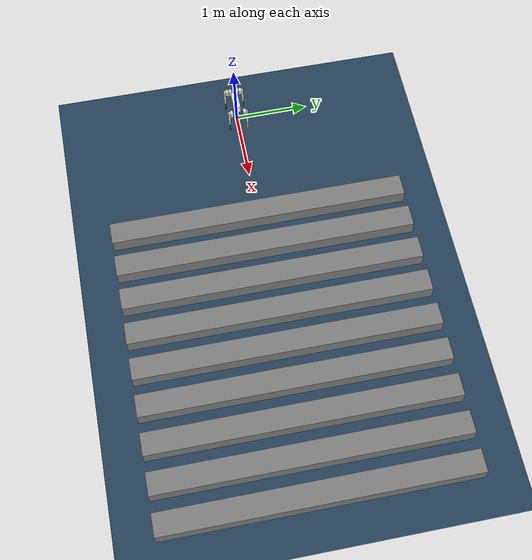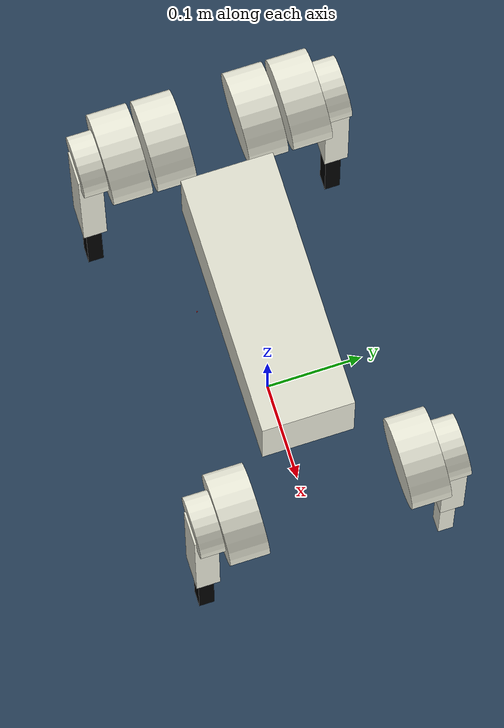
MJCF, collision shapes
<mujoco model="empty_world">
  <include file="go1.xml"/>
  <statistic center="0 0 0.1" extent="0.8"/>

  <visual>
    <headlight diffuse="0.6 0.6 0.6" ambient="0.3 0.3 0.3" specular="0 0 0"/>
    <rgba haze="0.15 0.25 0.35 1"/>
    <global azimuth="-130" elevation="-20"/>
  </visual>

  <asset>
    <texture type="skybox" builtin="gradient" rgb1="0.3 0.5 0.7" rgb2="0 0 0" width="512" height="3072"/>
    <texture type="2d" name="groundplane" builtin="checker" mark="edge" rgb1="0.2 0.3 0.4" rgb2="0.1 0.2 0.3"
      markrgb="0.8 0.8 0.8" width="300" height="300"/>
    <material name="groundplane" texture="groundplane" texuniform="true" texrepeat="5 5" reflectance="0.2"/>
  </asset>

  <worldbody>
    <light pos="0 0 1.5" dir="0 0 -1" directional="true"/>
    <geom name="floor" size="0 0 0.05" type="plane" material="groundplane"/>

    <geom pos="1.7 0 0.10" type="box"  size="0.15 2 0.10" quat="1.0 0 0 0"/>
    <geom pos="2.2 0 0.10" type="box"  size="0.15 2 0.10" quat="1.0 0 0 0"/>
    <geom pos="2.7 0 0.10" type="box"  size="0.15 2 0.10" quat="1.0 0 0 0"/>
    <geom pos="3.2 0 0.10" type="box"  size="0.15 2 0.10" quat="1.0 0 0 0"/>
    <geom pos="3.7 0 0.10" type="box"  size="0.15 2 0.10" quat="1.0 0 0 0"/>
    <geom pos="4.2 0 0.10" type="box"  size="0.15 2 0.10" quat="1.0 0 0 0"/>
    <geom pos="4.7 0 0.10" type="box"  size="0.15 2 0.10" quat="1.0 0 0 0"/>
    <geom pos="5.2 0 0.10" type="box"  size="0.15 2 0.10" quat="1.0 0 0 0"/>
    <geom pos="5.7 0 0.10" type="box"  size="0.15 2 0.10" quat="1.0 0 0 0"/>

  </worldbody>
</mujoco>

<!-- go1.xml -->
<mujoco model="go1">
  <compiler angle="radian" meshdir="../meshes" autolimits="true" />

  <option cone="elliptic" impratio="100" />

    <default>
      <joint axis="0 1 0" damping="0.1" armature="0.01" frictionloss="0.2"/>
    </default>

    <asset>
        <mesh name="trunk" file="trunk.stl" />
        <mesh name="hip" file="hip.stl" />
        <mesh name="thigh_mirror" file="thigh_mirror.stl" />
        <mesh name="calf" file="calf.stl" />
        <mesh name="thigh" file="thigh.stl" />
        <mesh name="d435" file="d435_simplified.stl" />
    </asset>

    <worldbody>
        <body name="base_link" pos="0 0 0.35">
            <inertial pos="0.0116053 0.00442221 0.000106692" quat="0.0111438 0.707126 -0.00935374 0.706938" mass="4.801" diaginertia="0.0447997 0.0366257 0.0162187" />
            <freejoint />
            <geom type="mesh" contype="0" conaffinity="0" group="1" rgba="0.913725 0.913725 0.847059 1" mesh="trunk" />
            <geom size="0.13 0.04675 0.057" type="box" rgba="0.913725 0.913725 0.847059 1" />
            <geom size="0.0005 0.0005 0.0005" pos="-0.01592 -0.06659 -0.00617" type="box" contype="0" conaffinity="0" group="1" rgba="0.8 0 0 0" />
            <geom size="0.0005 0.0005 0.0005" pos="-0.01592 -0.06659 -0.00617" type="box" rgba="0.8 0 0 0" />
            <site name="imu" pos="0 0 0"/>
            <body name="depth_camera" pos="0.28 0 0.12" euler="0 0.349066 0">
                <!-- 相对于这个body的位置和方向 不要更改 !fovy the same as D435i for 4:3 aspect ratio -->
                <camera name="depth_camera" pos="0. 0. 0." euler="1.57 -1.57 0" fovy="58"/>
                <geom type="mesh" euler="-1.57 1.57 0" contype="0" conaffinity="0" group="1" rgba="0.913725 0.913725 0.847059 1" mesh="d435" />
            </body>

            <body name="FR_hip" pos="0.1881 -0.04675 0">
                <inertial pos="-0.00406411 -0.0193463 4.50733e-06" quat="0.467526 0.531662 -0.466259 0.530431" mass="0.679292" diaginertia="0.00131334 0.00122648 0.000728484" />
                <joint name="FR_hip_joint" pos="0 0 0" axis="1 0 0" limited="true" range="-0.802851 0.802851" />
                <geom quat="0 1 0 0" type="mesh" contype="0" conaffinity="0" group="1" rgba="0.913725 0.913725 0.847059 1" mesh="hip" />
                <geom size="0.046 0.02" pos="0 -0.045 0" quat="0.707107 0.707107 0 0" type="cylinder" rgba="0.913725 0.913725 0.847059 0" />
                <geom size="0.031 0.02" pos="0 -0.07 0" quat="0.707107 0.707107 0 0" type="cylinder" rgba="0.913725 0.913725 0.847059 0" />

                <body name="FR_thigh" pos="0 -0.08 0">
                    <inertial pos="-0.003468 0.018947 -0.032736" quat="0.999266 0.00067676 -0.0382978 0.000639813" mass="0.898919" diaginertia="0.00542178 0.00514246 0.000998869" />
                    <joint name="FR_thigh_joint" pos="0 0 0" axis="0 1 0" limited="true" range="-1.0472 4.18879" />
                    <geom type="mesh" contype="0" conaffinity="0" group="1" rgba="0.913725 0.913725 0.847059 1" mesh="thigh_mirror" />
                    <geom size="0.1065 0.01225 0.017" pos="0 0 -0.1065" quat="0.707107 0 0.707107 0" type="box" rgba="0.913725 0.913725 0.847059 0" />
                    <body name="FR_calf" pos="0 0 -0.213">
                        <inertial pos="0.00455603 0.0009473 -0.147239" quat="0.762045 0.00970173 0.0180098 0.647201" mass="0.218015" diaginertia="0.00399678 0.00398122 3.99428e-05" />
                        <joint name="FR_calf_joint" pos="0 0 0" axis="0 1 0" limited="true" range="-2.69653 -0.916298" />
                        <geom type="mesh" contype="0" conaffinity="0" group="1" rgba="0 0 0 1" mesh="calf" />
                        <geom size="0.1065 0.008 0.008" pos="0 0 -0.1065" quat="0.707107 0 0.707107 0" type="box" rgba="0 0 0 0" />
                        <geom size="0.01" pos="0 0 -0.213" contype="0" conaffinity="0" group="1" rgba="0 0 0 1" />
                        <geom size="0.02" pos="0 0 -0.213" rgba="0 0 0 1" />
                    </body>
                </body>
            </body>

            <body name="FL_hip" pos="0.1881 0.04675 0">
                <inertial pos="-0.00406411 0.0193463 4.50733e-06" quat="0.531662 0.467526 -0.530431 0.466259" mass="0.679292" diaginertia="0.00131334 0.00122648 0.000728484" />
                <joint name="FL_hip_joint" pos="0 0 0" axis="1 0 0" limited="true" range="-0.802851 0.802851" />
                <geom type="mesh" contype="0" conaffinity="0" group="1" rgba="0.913725 0.913725 0.847059 1" mesh="hip" />
                <geom size="0.046 0.02" pos="0 0.045 0" quat="0.707107 0.707107 0 0" type="cylinder" rgba="0.913725 0.913725 0.847059 0" />
                <geom size="0.031 0.02" pos="0 0.07 0" quat="0.707107 0.707107 0 0" type="cylinder" rgba="0.913725 0.913725 0.847059 0" />

                <body name="FL_thigh" pos="0 0.08 0">
                    <inertial pos="-0.003468 -0.018947 -0.032736" quat="0.999266 -0.00067676 -0.0382978 -0.000639813" mass="0.898919" diaginertia="0.00542178 0.00514246 0.000998869" />
                    <joint name="FL_thigh_joint" pos="0 0 0" axis="0 1 0" limited="true" range="-1.0472 4.18879" />
                    <geom type="mesh" contype="0" conaffinity="0" group="1" rgba="0.913725 0.913725 0.847059 1" mesh="thigh" />
                    <geom size="0.1065 0.01225 0.017" pos="0 0 -0.1065" quat="0.707107 0 0.707107 0" type="box" rgba="0.913725 0.913725 0.847059 0" />
                    <body name="FL_calf" pos="0 0 -0.213">
                        <inertial pos="0.00455603 0.0009473 -0.147239" quat="0.762045 0.00970173 0.0180098 0.647201" mass="0.218015" diaginertia="0.00399678 0.00398122 3.99428e-05" />
                        <joint name="FL_calf_joint" pos="0 0 0" axis="0 1 0" limited="true" range="-2.69653 -0.916298" />
                        <geom type="mesh" contype="0" conaffinity="0" group="1" rgba="0 0 0 1" mesh="calf" />
                        <geom size="0.1065 0.008 0.008" pos="0 0 -0.1065" quat="0.707107 0 0.707107 0" type="box" rgba="0.913725 0.913725 0.847059 0" />
                        <geom size="0.01" pos="0 0 -0.213" contype="0" conaffinity="0" group="1" rgba="0 0 0 1" />
                        <geom size="0.02" pos="0 0 -0.213" rgba="0 0 0 1" />
                    </body>
                </body>
            </body>

            <body name="RR_hip" pos="-0.1881 -0.04675 0">
                <inertial pos="0.00406411 -0.0193463 4.50733e-06" quat="0.530431 0.466259 -0.531662 0.467526" mass="0.679292" diaginertia="0.00131334 0.00122648 0.000728484" />
                <joint name="RR_hip_joint" pos="0 0 0" axis="1 0 0" limited="true" range="-0.802851 0.802851" />
                <geom quat="0 0 0 -1" type="mesh" contype="0" conaffinity="0" group="1" rgba="0.913725 0.913725 0.847059 1" mesh="hip" />
                <geom size="0.046 0.02" quat="0.707107 0.707107 0 0" type="cylinder" rgba="0.913725 0.913725 0.847059 1" />
                <geom size="0.046 0.02" pos="0 -0.045 0" quat="0.707107 0.707107 0 0" type="cylinder" rgba="0.913725 0.913725 0.847059 0" />
                <geom size="0.031 0.02" pos="0 -0.07 0" quat="0.707107 0.707107 0 0" type="cylinder" rgba="0.913725 0.913725 0.847059 0" />

                <body name="RR_thigh" pos="0 -0.08 0">
                    <inertial pos="-0.003468 0.018947 -0.032736" quat="0.999266 0.00067676 -0.0382978 0.000639813" mass="0.898919" diaginertia="0.00542178 0.00514246 0.000998869" />
                    <joint name="RR_thigh_joint" pos="0 0 0" axis="0 1 0" limited="true" range="-1.0472 4.18879" />
                    <geom type="mesh" contype="0" conaffinity="0" group="1" rgba="0.913725 0.913725 0.847059 1" mesh="thigh_mirror" />
                    <geom size="0.1065 0.01225 0.017" pos="0 0 -0.1065" quat="0.707107 0 0.707107 0" type="box" rgba="0.913725 0.913725 0.847059 0" />
                    <body name="RR_calf" pos="0 0 -0.213">
                        <inertial pos="0.00455603 0.0009473 -0.147239" quat="0.762045 0.00970173 0.0180098 0.647201" mass="0.218015" diaginertia="0.00399678 0.00398122 3.99428e-05" />
                        <joint name="RR_calf_joint" pos="0 0 0" axis="0 1 0" limited="true" range="-2.69653 -0.916298" />
                        <geom type="mesh" contype="0" conaffinity="0" group="1" rgba="0 0 0 1" mesh="calf" />
                        <geom size="0.1065 0.008 0.008" pos="0 0 -0.1065" quat="0.707107 0 0.707107 0" type="box" rgba="0 0 0 0" />
                        <geom size="0.01" pos="0 0 -0.213" contype="0" conaffinity="0" group="1" rgba="0 0 0 1" />
                        <geom size="0.02" pos="0 0 -0.213" rgba="0 0 0 1" />
                    </body>
                </body>
            </body>

            <body name="RL_hip" pos="-0.1881 0.04675 0">
                <inertial pos="0.00406411 0.0193463 4.50733e-06" quat="0.466259 0.530431 -0.467526 0.531662" mass="0.679292" diaginertia="0.00131334 0.00122648 0.000728484" />
                <joint name="RL_hip_joint" pos="0 0 0" axis="1 0 0" limited="true" range="-0.802851 0.802851"  />
                <geom quat="0 0 1 0" type="mesh" contype="0" conaffinity="0" group="1" rgba="0.913725 0.913725 0.847059 1" mesh="hip" />
                <geom size="0.046 0.02" quat="0.707107 0.707107 0 0" type="cylinder" rgba="0.913725 0.913725 0.847059 1" />
                <geom size="0.046 0.02" pos="0 0.045 0" quat="0.707107 0.707107 0 0" type="cylinder" rgba="0.913725 0.913725 0.847059 0" />
                <geom size="0.031 0.02" pos="0 0.07 0" quat="0.707107 0.707107 0 0" type="cylinder" rgba="0.913725 0.913725 0.847059 0" />

                <body name="RL_thigh" pos="0 0.08 0">
                    <inertial pos="-0.003468 -0.018947 -0.032736" quat="0.999266 -0.00067676 -0.0382978 -0.000639813" mass="0.898919" diaginertia="0.00542178 0.00514246 0.000998869" />
                    <joint name="RL_thigh_joint" pos="0 0 0" axis="0 1 0" limited="true" range="-1.0472 4.18879" />
                    <geom type="mesh" contype="0" conaffinity="0" group="1" rgba="0.913725 0.913725 0.847059 1" mesh="thigh" />
                    <geom size="0.1065 0.01225 0.017" pos="0 0 -0.1065" quat="0.707107 0 0.707107 0" type="box" rgba="0.913725 0.913725 0.847059 0" />
                    <body name="RL_calf" pos="0 0 -0.213">
                        <inertial pos="0.00455603 0.0009473 -0.147239" quat="0.762045 0.00970173 0.0180098 0.647201" mass="0.218015" diaginertia="0.00399678 0.00398122 3.99428e-05" />
                        <joint name="RL_calf_joint" pos="0 0 0" axis="0 1 0" limited="true" range="-2.69653 -0.916298" />
                        <geom type="mesh" contype="0" conaffinity="0" group="1" rgba="0 0 0 1" mesh="calf" />
                        <geom size="0.1065 0.008 0.008" pos="0 0 -0.1065" quat="0.707107 0 0.707107 0" type="box" rgba="0 0 0 0" />
                        <geom size="0.01" pos="0 0 -0.213" contype="0" conaffinity="0" group="1" rgba="0 0 0 1" />
                        <geom size="0.02" pos="0 0 -0.213" rgba="0 0 0 1" />
                    </body>
                </body>
            </body>
        </body>
    </worldbody>

 <actuator>
    <motor name="FR_hip"       gear="1" joint="FR_hip_joint" ctrlrange="-23.7 23.7" ctrllimited="true"/>
    <motor name="FR_thigh"     gear="1" joint="FR_thigh_joint" ctrlrange="-23.7 23.7" ctrllimited="true"/>
    <motor name="FR_calf"      gear="1" joint="FR_calf_joint" ctrlrange="-33.5 33.5" ctrllimited="true"/>
    <motor name="FL_hip"       gear="1" joint="FL_hip_joint" ctrlrange="-23.7 23.7" ctrllimited="true"/>
    <motor name="FL_thigh"     gear="1" joint="FL_thigh_joint" ctrlrange="-23.7 23.7" ctrllimited="true"/>
    <motor name="FL_calf"      gear="1" joint="FL_calf_joint" ctrlrange="-33.5 33.5" ctrllimited="true"/>
    <motor name="RR_hip"       gear="1" joint="RR_hip_joint" ctrlrange="-23.7 23.7" ctrllimited="true"/>
    <motor name="RR_thigh"     gear="1" joint="RR_thigh_joint" ctrlrange="-23.7 23.7" ctrllimited="true"/>
    <motor name="RR_calf"      gear="1" joint="RR_calf_joint" ctrlrange="-33.5 33.5" ctrllimited="true"/>
    <motor name="RL_hip"       gear="1" joint="RL_hip_joint" ctrlrange="-23.7 23.7" ctrllimited="true"/>
    <motor name="RL_thigh"     gear="1" joint="RL_thigh_joint" ctrlrange="-23.7 23.7" ctrllimited="true"/>
    <motor name="RL_calf"      gear="1" joint="RL_calf_joint" ctrlrange="-33.5 33.5" ctrllimited="true"/>
  </actuator>

  <sensor>
    <jointpos name="FR_hip_pos" joint="FR_hip_joint" />
    <jointpos name="FR_thigh_pos" joint="FR_thigh_joint" />
    <jointpos name="FR_calf_pos" joint="FR_calf_joint" />
    <jointpos name="FL_hip_pos" joint="FL_hip_joint" />
    <jointpos name="FL_thigh_pos" joint="FL_thigh_joint" />
    <jointpos name="FL_calf_pos" joint="FL_calf_joint" />
    <jointpos name="RR_hip_pos" joint="RR_hip_joint" />
    <jointpos name="RR_thigh_pos" joint="RR_thigh_joint" />
    <jointpos name="RR_calf_pos" joint="RR_calf_joint" />
    <jointpos name="RL_hip_pos" joint="RL_hip_joint" />
    <jointpos name="RL_thigh_pos" joint="RL_thigh_joint" />
    <jointpos name="RL_calf_pos" joint="RL_calf_joint" />

    <jointvel name="FR_hip_vel" joint="FR_hip_joint" />
    <jointvel name="FR_thigh_vel" joint="FR_thigh_joint" />
    <jointvel name="FR_calf_vel" joint="FR_calf_joint" />
    <jointvel name="FL_hip_vel" joint="FL_hip_joint" />
    <jointvel name="FL_thigh_vel" joint="FL_thigh_joint" />
    <jointvel name="FL_calf_vel" joint="FL_calf_joint" />
    <jointvel name="RR_hip_vel" joint="RR_hip_joint" />
    <jointvel name="RR_thigh_vel" joint="RR_thigh_joint" />
    <jointvel name="RR_calf_vel" joint="RR_calf_joint" />
    <jointvel name="RL_hip_vel" joint="RL_hip_joint" />
    <jointvel name="RL_thigh_vel" joint="RL_thigh_joint" />
    <jointvel name="RL_calf_vel" joint="RL_calf_joint" />

    <jointactuatorfrc name="FR_hip_torque" joint="FR_hip_joint" noise="0.01" />
    <jointactuatorfrc name="FR_thigh_torque" joint="FR_thigh_joint" noise="0.01" />
    <jointactuatorfrc name="FR_calf_torque" joint="FR_calf_joint" noise="0.01" />
    <jointactuatorfrc name="FL_hip_torque" joint="FL_hip_joint" noise="0.01" />
    <jointactuatorfrc name="FL_thigh_torque" joint="FL_thigh_joint" noise="0.01" />
    <jointactuatorfrc name="FL_calf_torque" joint="FL_calf_joint" noise="0.01" />
    <jointactuatorfrc name="RR_hip_torque" joint="RR_hip_joint" noise="0.01" />
    <jointactuatorfrc name="RR_thigh_torque" joint="RR_thigh_joint" noise="0.01" />
    <jointactuatorfrc name="RR_calf_torque" joint="RR_calf_joint" noise="0.01" />
    <jointactuatorfrc name="RL_hip_torque" joint="RL_hip_joint" noise="0.01" />
    <jointactuatorfrc name="RL_thigh_torque" joint="RL_thigh_joint" noise="0.01" />
    <jointactuatorfrc name="RL_calf_torque" joint="RL_calf_joint" noise="0.01" />

    <framequat name="imu_quat" objtype="site" objname="imu" />
    <gyro name="imu_gyro" site="imu" />
    <accelerometer name="imu_acc" site="imu" />

    <framepos name="frame_pos" objtype="site" objname="imu" />
    <framelinvel name="frame_vel" objtype="site" objname="imu" />
  </sensor>

</mujoco>
